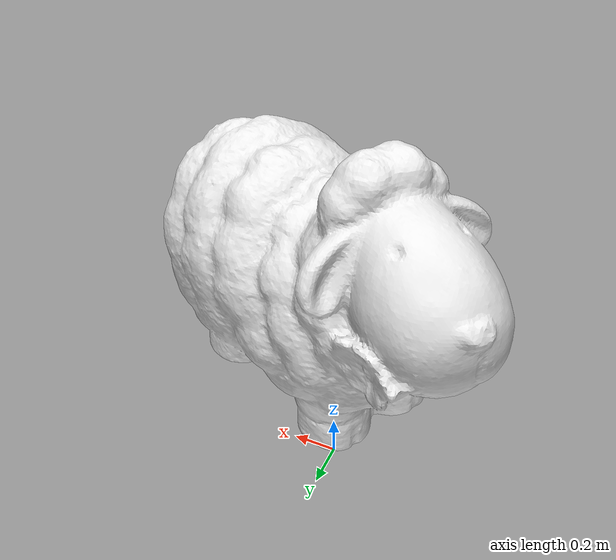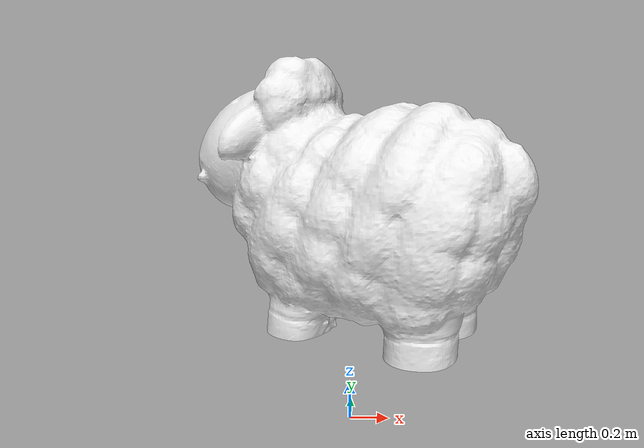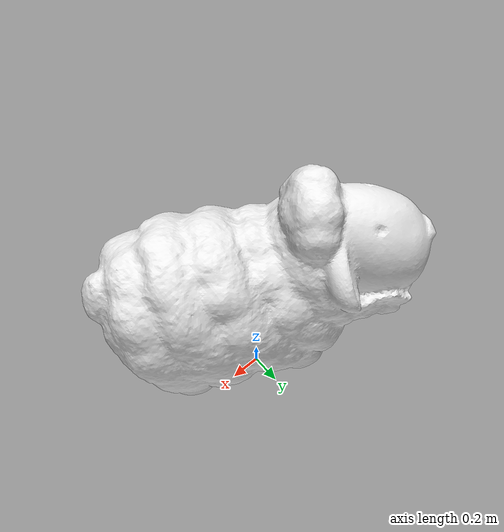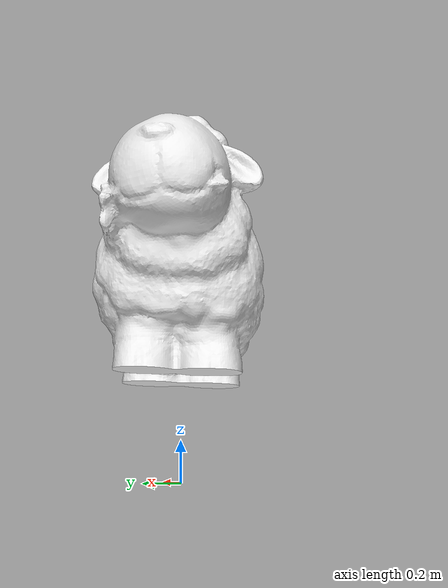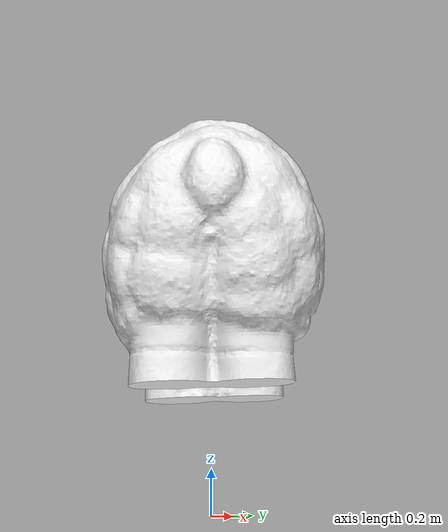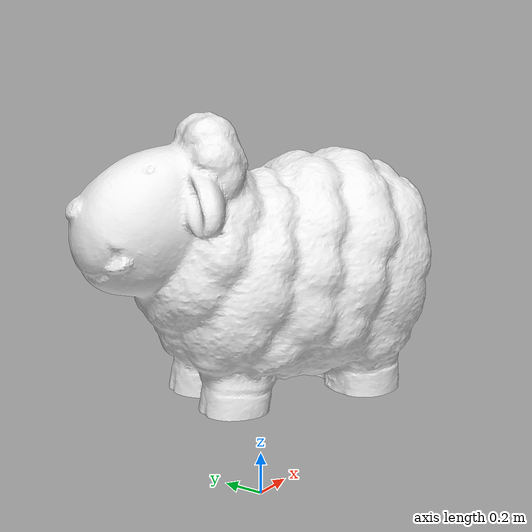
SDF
<?xml version='1.0'?>
<sdf version="1.6">
  <model name="sheep_1">
    <pose>0 0 0.5 0 0 0</pose>
    <static>true</static>
    <link name="link">
      <inertial>
        <mass>1.0</mass>
        <inertia>
          <ixx>0.083</ixx>       <!-- for a box: ixx = 0.083 * mass * (y*y + z*z) -->
          <ixy>0.0</ixy>         <!-- for a box: ixy = 0 -->
          <ixz>0.0</ixz>         <!-- for a box: ixz = 0 -->
          <iyy>0.083</iyy>       <!-- for a box: iyy = 0.083 * mass * (x*x + z*z) -->
          <iyz>0.0</iyz>         <!-- for a box: iyz = 0 -->
          <izz>0.083</izz>       <!-- for a box: izz = 0.083 * mass * (x*x + y*y) -->
        </inertia>
      </inertial>
      <collision name="collision">
        <geometry>
          <box>
            <size>1 1 1</size>
          </box>
        </geometry>
      </collision>
      <visual name='base_link_visual'>
        <pose>0 0 0 0 0 0</pose>
        <geometry>
          <mesh>
            <scale>0.02 0.02 0.02</scale>
            <uri>model://sheep_1/meshes/sheep_1.stl</uri>
          </mesh>
        </geometry>
        <material>
          <script>
            <name>Gazebo/White</name>
            <uri>file://media/materials/scripts/gazebo.material</uri>
          </script>
        </material>
      </visual>
    </link>
  </model>
</sdf>
